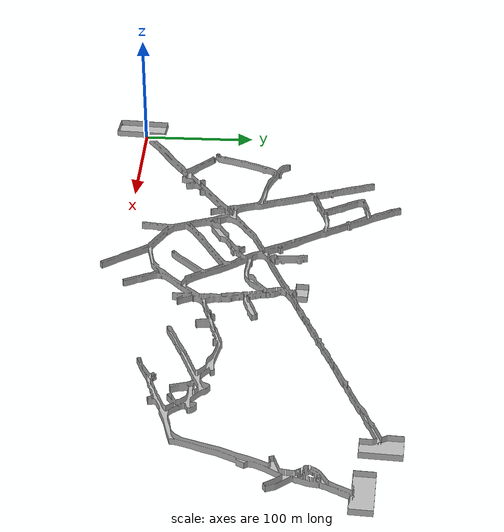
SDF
<?xml version="1.0" ?>
<sdf version="1.4">
  <world name="default">
    <include>
      <uri>model://sun</uri>
    </include>
    <include>
      <uri>model://edgar_mine</uri>
    </include>
    <plugin name="ros_interface_plugin" filename="librotors_gazebo_ros_interface_plugin.so"/>
    <spherical_coordinates>
      <surface_model>EARTH_WGS84</surface_model>
      <latitude_deg>47.3667</latitude_deg>
      <longitude_deg>8.5500</longitude_deg>
      <elevation>500.0</elevation>
      <heading_deg>0</heading_deg>
    </spherical_coordinates>
    <physics type='ode'>
      <ode>
        <solver>
          <type>quick</type>
          <iters>1000</iters>
          <sor>1.3</sor>
        </solver>
        <constraints>
          <cfm>0</cfm>
          <erp>0.2</erp>
          <contact_max_correcting_vel>100</contact_max_correcting_vel>
          <contact_surface_layer>0.001</contact_surface_layer>
        </constraints>
      </ode>
      <max_step_size>0.01</max_step_size>
      <real_time_factor>1</real_time_factor>
      <real_time_update_rate>100</real_time_update_rate>
      <gravity>0 0 -9.8</gravity>
    </physics>
  </world>
</sdf>

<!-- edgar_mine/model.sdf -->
<sdf version="1.6">
 <model name="edgar_mine">
   <pose>-22.0 -26.0 0 1.57 0 1.5</pose>
   <static>true</static>
   <link name="link">
     <collision name="collision">
       <geometry>
         <mesh>
           <uri>model://edgar_mine/edgar_mine.dae</uri>
         </mesh>
       </geometry>
     </collision>
     <visual name="visual">
       <geometry>
         <mesh>
           <uri>model://edgar_mine/edgar_mine.dae</uri>
         </mesh>
       </geometry>
     </visual>
   </link>
 </model>
</sdf>
